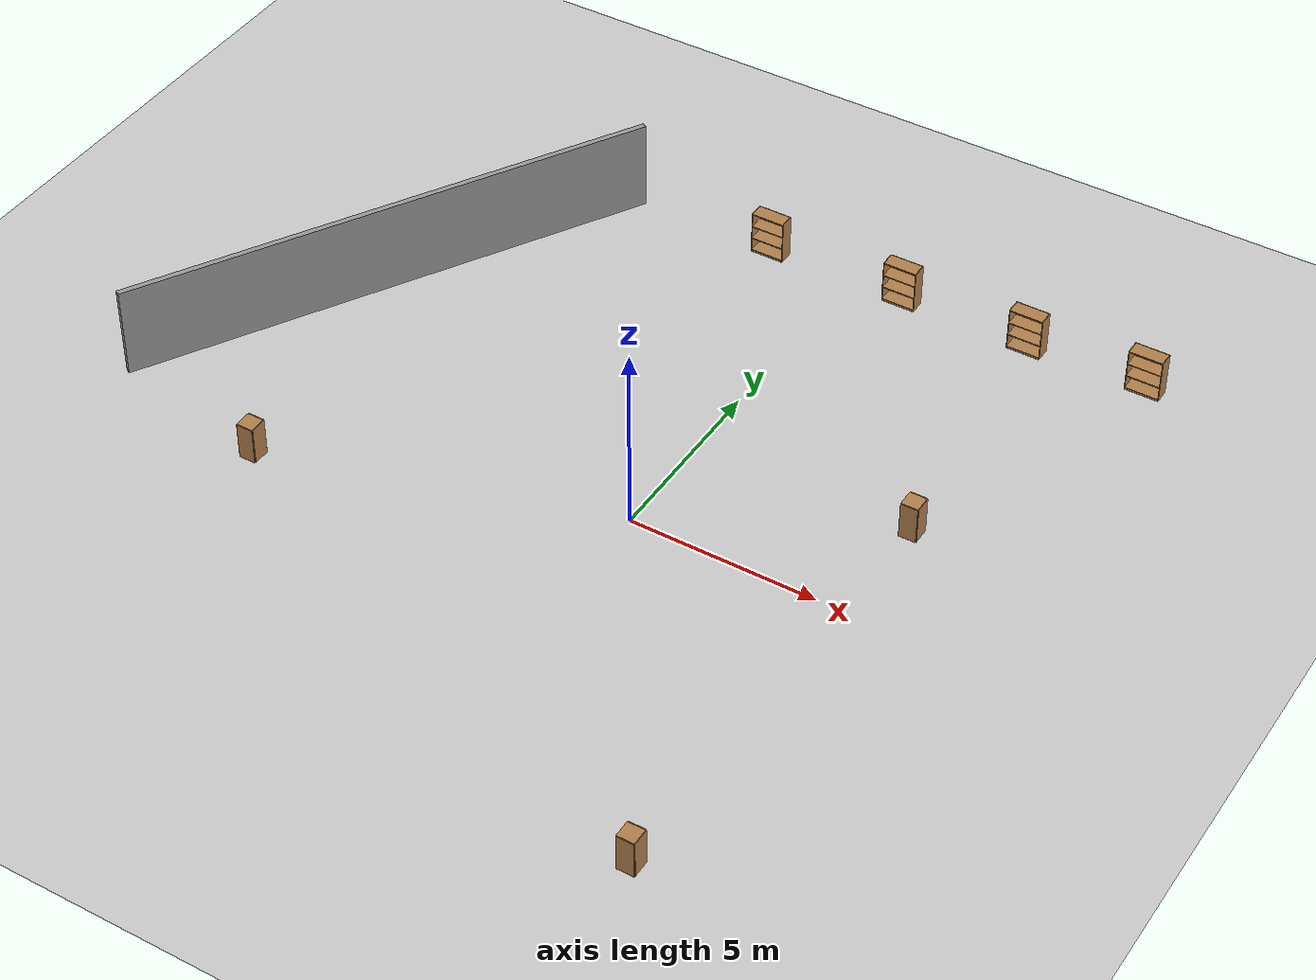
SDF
<sdf version="1.6">
 <world name="default">
  <light name="sun" type="directional">
   <pose>0 0 10 0 -0 0</pose>
   <diffuse>0.8 0.8 0.8 1</diffuse>
   <specular>0.2 0.2 0.2 1</specular>
   <attenuation>
    <range>1000</range>
    <constant>0.9</constant>
    <linear>0.01</linear>
    <quadratic>0.001</quadratic>
   </attenuation>
   <direction>-0.5 0.1 -0.9</direction>
  </light>
  <model name="ground_plane">
   <static>1</static>
   <link name="link">
    <collision name="collision">
     <geometry><plane><normal>0 0 1</normal><size>100 100</size></plane></geometry>
     <surface><friction><ode><mu>100</mu><mu2>50</mu2></ode></friction></surface>
    </collision>
    <visual name="visual">
     <cast_shadows>0</cast_shadows>
     <geometry><plane><normal>0 0 1</normal><size>100 100</size></plane></geometry>
     <material>
      <script><uri>file://media/materials/scripts/gazebo.material</uri><name>Gazebo/Grey</name></script>
     </material>
    </visual>
   </link>
  </model>
  <gravity>0 0 -9.8</gravity>
  <magnetic_field>6e-06 2.3e-05 -4.2e-05</magnetic_field>
  <atmosphere type="adiabatic"/>
  <physics name="default_physics" default="0" type="ode">
   <max_step_size>0.001</max_step_size>
   <real_time_factor>1</real_time_factor>
   <real_time_update_rate>1000</real_time_update_rate>
  </physics>
  <scene><ambient>0.4 0.4 0.4 1</ambient><background>0.7 0.7 0.7 1</background><shadows>1</shadows></scene>
  <audio><device>default</device></audio>
  <spherical_coordinates>
   <surface_model>EARTH_WGS84</surface_model>
   <latitude_deg>0</latitude_deg>
   <longitude_deg>0</longitude_deg>
   <elevation>0</elevation>
   <heading_deg>0</heading_deg>
  </spherical_coordinates>
  <model name="room10">
   <pose>-9.79599 4.32214 0 0 -0 0</pose>
   <link name="Wall_0">
    <collision name="Wall_0_Collision">
     <geometry><box><size>14.5 0.15 2.5</size></box></geometry>
     <pose>0 0 1.25 0 -0 0</pose>
    </collision>
    <visual name="Wall_0_Visual">
     <pose>0 0 1.25 0 -0 0</pose>
     <geometry><box><size>14.5 0.15 2.5</size></box></geometry>
     <material>
      <script><uri>file://media/materials/scripts/gazebo.material</uri><name>Gazebo/Grey</name></script>
      <ambient>1 1 1 1</ambient>
     </material>
     <meta><layer>0</layer></meta>
    </visual>
    <pose>0 0 0 0 -0 -2.0944</pose>
   </link>
   <static>1</static>
  </model>
  <model name="bookshelf">
   <static>1</static>
   <link name="link">
    <inertial><mass>1</mass></inertial>
    <collision name="back">
     <pose>0 0.005 0.6 0 -0 0</pose>
     <geometry><box><size>0.9 0.01 1.2</size></box></geometry>
    </collision>
    <visual name="visual1">
     <pose>0 0.005 0.6 0 -0 0</pose>
     <geometry><box><size>0.9 0.01 1.2</size></box></geometry>
     <material>
      <script><uri>file://media/materials/scripts/gazebo.material</uri><name>Gazebo/Wood</name></script>
     </material>
    </visual>
    <collision name="left_side">
     <pose>0.45 -0.195 0.6 0 -0 0</pose>
     <geometry><box><size>0.02 0.4 1.2</size></box></geometry>
    </collision>
    <visual name="visual2">
     <pose>0.45 -0.195 0.6 0 -0 0</pose>
     <geometry><box><size>0.02 0.4 1.2</size></box></geometry>
     <material>
      <script><uri>file://media/materials/scripts/gazebo.material</uri><name>Gazebo/Wood</name></script>
     </material>
    </visual>
    <collision name="right_side">
     <pose>-0.45 -0.195 0.6 0 -0 0</pose>
     <geometry><box><size>0.02 0.4 1.2</size></box></geometry>
    </collision>
    <visual name="visual3">
     <pose>-0.45 -0.195 0.6 0 -0 0</pose>
     <geometry><box><size>0.02 0.4 1.2</size></box></geometry>
     <material>
      <script><uri>file://media/materials/scripts/gazebo.material</uri><name>Gazebo/Wood</name></script>
     </material>
    </visual>
    <collision name="bottom">
     <pose>0 -0.195 0.03 0 -0 0</pose>
     <geometry><box><size>0.88 0.4 0.06</size></box></geometry>
    </collision>
    <visual name="visual4">
     <pose>0 -0.195 0.03 0 -0 0</pose>
     <geometry><box><size>0.88 0.4 0.06</size></box></geometry>
     <material>
      <script><uri>file://media/materials/scripts/gazebo.material</uri><name>Gazebo/Wood</name></script>
     </material>
    </visual>
    <collision name="top">
     <pose>0 -0.195 1.19 0 -0 0</pose>
     <geometry><box><size>0.88 0.4 0.02</size></box></geometry>
    </collision>
    <visual name="visual5">
     <pose>0 -0.195 1.19 0 -0 0</pose>
     <geometry><box><size>0.88 0.4 0.02</size></box></geometry>
     <material>
      <script><uri>file://media/materials/scripts/gazebo.material</uri><name>Gazebo/Wood</name></script>
     </material>
    </visual>
    <collision name="low_shelf">
     <pose>0 -0.195 0.43 0 -0 0</pose>
     <geometry><box><size>0.88 0.4 0.02</size></box></geometry>
    </collision>
    <visual name="visual6">
     <pose>0 -0.195 0.43 0 -0 0</pose>
     <geometry><box><size>0.88 0.4 0.02</size></box></geometry>
     <material>
      <script><uri>file://media/materials/scripts/gazebo.material</uri><name>Gazebo/Wood</name></script>
     </material>
    </visual>
    <collision name="high_shelf">
     <pose>0 -0.195 0.8 0 -0 0</pose>
     <geometry><box><size>0.88 0.4 0.02</size></box></geometry>
    </collision>
    <visual name="visual7">
     <pose>0 -0.195 0.8 0 -0 0</pose>
     <geometry><box><size>0.88 0.4 0.02</size></box></geometry>
     <material>
      <script><uri>file://media/materials/scripts/gazebo.material</uri><name>Gazebo/Wood</name></script>
     </material>
    </visual>
   </link>
   <pose>-2.27111 10.6899 0 0 -0 0</pose>
  </model>
  <model name="bookshelf_0">
   <static>1</static>
   <link name="link">
    <inertial><mass>1</mass></inertial>
    <collision name="back">
     <pose>0 0.005 0.6 0 -0 0</pose>
     <geometry><box><size>0.9 0.01 1.2</size></box></geometry>
    </collision>
    <visual name="visual1">
     <pose>0 0.005 0.6 0 -0 0</pose>
     <geometry><box><size>0.9 0.01 1.2</size></box></geometry>
     <material>
      <script><uri>file://media/materials/scripts/gazebo.material</uri><name>Gazebo/Wood</name></script>
     </material>
    </visual>
    <collision name="left_side">
     <pose>0.45 -0.195 0.6 0 -0 0</pose>
     <geometry><box><size>0.02 0.4 1.2</size></box></geometry>
    </collision>
    <visual name="visual2">
     <pose>0.45 -0.195 0.6 0 -0 0</pose>
     <geometry><box><size>0.02 0.4 1.2</size></box></geometry>
     <material>
      <script><uri>file://media/materials/scripts/gazebo.material</uri><name>Gazebo/Wood</name></script>
     </material>
    </visual>
    <collision name="right_side">
     <pose>-0.45 -0.195 0.6 0 -0 0</pose>
     <geometry><box><size>0.02 0.4 1.2</size></box></geometry>
    </collision>
    <visual name="visual3">
     <pose>-0.45 -0.195 0.6 0 -0 0</pose>
     <geometry><box><size>0.02 0.4 1.2</size></box></geometry>
     <material>
      <script><uri>file://media/materials/scripts/gazebo.material</uri><name>Gazebo/Wood</name></script>
     </material>
    </visual>
    <collision name="bottom">
     <pose>0 -0.195 0.03 0 -0 0</pose>
     <geometry><box><size>0.88 0.4 0.06</size></box></geometry>
    </collision>
    <visual name="visual4">
     <pose>0 -0.195 0.03 0 -0 0</pose>
     <geometry><box><size>0.88 0.4 0.06</size></box></geometry>
     <material>
      <script><uri>file://media/materials/scripts/gazebo.material</uri><name>Gazebo/Wood</name></script>
     </material>
    </visual>
    <collision name="top">
     <pose>0 -0.195 1.19 0 -0 0</pose>
     <geometry><box><size>0.88 0.4 0.02</size></box></geometry>
    </collision>
    <visual name="visual5">
     <pose>0 -0.195 1.19 0 -0 0</pose>
     <geometry><box><size>0.88 0.4 0.02</size></box></geometry>
     <material>
      <script><uri>file://media/materials/scripts/gazebo.material</uri><name>Gazebo/Wood</name></script>
     </material>
    </visual>
    <collision name="low_shelf">
     <pose>0 -0.195 0.43 0 -0 0</pose>
     <geometry><box><size>0.88 0.4 0.02</size></box></geometry>
    </collision>
    <visual name="visual6">
     <pose>0 -0.195 0.43 0 -0 0</pose>
     <geometry><box><size>0.88 0.4 0.02</size></box></geometry>
     <material>
      <script><uri>file://media/materials/scripts/gazebo.material</uri><name>Gazebo/Wood</name></script>
     </material>
    </visual>
    <collision name="high_shelf">
     <pose>0 -0.195 0.8 0 -0 0</pose>
     <geometry><box><size>0.88 0.4 0.02</size></box></geometry>
    </collision>
    <visual name="visual7">
     <pose>0 -0.195 0.8 0 -0 0</pose>
     <geometry><box><size>0.88 0.4 0.02</size></box></geometry>
     <material>
      <script><uri>file://media/materials/scripts/gazebo.material</uri><name>Gazebo/Wood</name></script>
     </material>
    </visual>
   </link>
   <pose>1.55418 10.6949 0 0 -0 0</pose>
  </model>
  <model name="bookshelf_1">
   <static>1</static>
   <link name="link">
    <inertial><mass>1</mass></inertial>
    <collision name="back">
     <pose>0 0.005 0.6 0 -0 0</pose>
     <geometry><box><size>0.9 0.01 1.2</size></box></geometry>
    </collision>
    <visual name="visual1">
     <pose>0 0.005 0.6 0 -0 0</pose>
     <geometry><box><size>0.9 0.01 1.2</size></box></geometry>
     <material>
      <script><uri>file://media/materials/scripts/gazebo.material</uri><name>Gazebo/Wood</name></script>
     </material>
    </visual>
    <collision name="left_side">
     <pose>0.45 -0.195 0.6 0 -0 0</pose>
     <geometry><box><size>0.02 0.4 1.2</size></box></geometry>
    </collision>
    <visual name="visual2">
     <pose>0.45 -0.195 0.6 0 -0 0</pose>
     <geometry><box><size>0.02 0.4 1.2</size></box></geometry>
     <material>
      <script><uri>file://media/materials/scripts/gazebo.material</uri><name>Gazebo/Wood</name></script>
     </material>
    </visual>
    <collision name="right_side">
     <pose>-0.45 -0.195 0.6 0 -0 0</pose>
     <geometry><box><size>0.02 0.4 1.2</size></box></geometry>
    </collision>
    <visual name="visual3">
     <pose>-0.45 -0.195 0.6 0 -0 0</pose>
     <geometry><box><size>0.02 0.4 1.2</size></box></geometry>
     <material>
      <script><uri>file://media/materials/scripts/gazebo.material</uri><name>Gazebo/Wood</name></script>
     </material>
    </visual>
    <collision name="bottom">
     <pose>0 -0.195 0.03 0 -0 0</pose>
     <geometry><box><size>0.88 0.4 0.06</size></box></geometry>
    </collision>
    <visual name="visual4">
     <pose>0 -0.195 0.03 0 -0 0</pose>
     <geometry><box><size>0.88 0.4 0.06</size></box></geometry>
     <material>
      <script><uri>file://media/materials/scripts/gazebo.material</uri><name>Gazebo/Wood</name></script>
     </material>
    </visual>
    <collision name="top">
     <pose>0 -0.195 1.19 0 -0 0</pose>
     <geometry><box><size>0.88 0.4 0.02</size></box></geometry>
    </collision>
    <visual name="visual5">
     <pose>0 -0.195 1.19 0 -0 0</pose>
     <geometry><box><size>0.88 0.4 0.02</size></box></geometry>
     <material>
      <script><uri>file://media/materials/scripts/gazebo.material</uri><name>Gazebo/Wood</name></script>
     </material>
    </visual>
    <collision name="low_shelf">
     <pose>0 -0.195 0.43 0 -0 0</pose>
     <geometry><box><size>0.88 0.4 0.02</size></box></geometry>
    </collision>
    <visual name="visual6">
     <pose>0 -0.195 0.43 0 -0 0</pose>
     <geometry><box><size>0.88 0.4 0.02</size></box></geometry>
     <material>
      <script><uri>file://media/materials/scripts/gazebo.material</uri><name>Gazebo/Wood</name></script>
     </material>
    </visual>
    <collision name="high_shelf">
     <pose>0 -0.195 0.8 0 -0 0</pose>
     <geometry><box><size>0.88 0.4 0.02</size></box></geometry>
    </collision>
    <visual name="visual7">
     <pose>0 -0.195 0.8 0 -0 0</pose>
     <geometry><box><size>0.88 0.4 0.02</size></box></geometry>
     <material>
      <script><uri>file://media/materials/scripts/gazebo.material</uri><name>Gazebo/Wood</name></script>
     </material>
    </visual>
   </link>
   <pose>5.09215 10.6814 0 0 -0 0</pose>
  </model>
  <model name="bookshelf_2">
   <static>1</static>
   <link name="link">
    <inertial><mass>1</mass></inertial>
    <collision name="back">
     <pose>0 0.005 0.6 0 -0 0</pose>
     <geometry><box><size>0.9 0.01 1.2</size></box></geometry>
    </collision>
    <visual name="visual1">
     <pose>0 0.005 0.6 0 -0 0</pose>
     <geometry><box><size>0.9 0.01 1.2</size></box></geometry>
     <material>
      <script><uri>file://media/materials/scripts/gazebo.material</uri><name>Gazebo/Wood</name></script>
     </material>
    </visual>
    <collision name="left_side">
     <pose>0.45 -0.195 0.6 0 -0 0</pose>
     <geometry><box><size>0.02 0.4 1.2</size></box></geometry>
    </collision>
    <visual name="visual2">
     <pose>0.45 -0.195 0.6 0 -0 0</pose>
     <geometry><box><size>0.02 0.4 1.2</size></box></geometry>
     <material>
      <script><uri>file://media/materials/scripts/gazebo.material</uri><name>Gazebo/Wood</name></script>
     </material>
    </visual>
    <collision name="right_side">
     <pose>-0.45 -0.195 0.6 0 -0 0</pose>
     <geometry><box><size>0.02 0.4 1.2</size></box></geometry>
    </collision>
    <visual name="visual3">
     <pose>-0.45 -0.195 0.6 0 -0 0</pose>
     <geometry><box><size>0.02 0.4 1.2</size></box></geometry>
     <material>
      <script><uri>file://media/materials/scripts/gazebo.material</uri><name>Gazebo/Wood</name></script>
     </material>
    </visual>
    <collision name="bottom">
     <pose>0 -0.195 0.03 0 -0 0</pose>
     <geometry><box><size>0.88 0.4 0.06</size></box></geometry>
    </collision>
    <visual name="visual4">
     <pose>0 -0.195 0.03 0 -0 0</pose>
     <geometry><box><size>0.88 0.4 0.06</size></box></geometry>
     <material>
      <script><uri>file://media/materials/scripts/gazebo.material</uri><name>Gazebo/Wood</name></script>
     </material>
    </visual>
    <collision name="top">
     <pose>0 -0.195 1.19 0 -0 0</pose>
     <geometry><box><size>0.88 0.4 0.02</size></box></geometry>
    </collision>
    <visual name="visual5">
     <pose>0 -0.195 1.19 0 -0 0</pose>
     <geometry><box><size>0.88 0.4 0.02</size></box></geometry>
     <material>
      <script><uri>file://media/materials/scripts/gazebo.material</uri><name>Gazebo/Wood</name></script>
     </material>
    </visual>
    <collision name="low_shelf">
     <pose>0 -0.195 0.43 0 -0 0</pose>
     <geometry><box><size>0.88 0.4 0.02</size></box></geometry>
    </collision>
    <visual name="visual6">
     <pose>0 -0.195 0.43 0 -0 0</pose>
     <geometry><box><size>0.88 0.4 0.02</size></box></geometry>
     <material>
      <script><uri>file://media/materials/scripts/gazebo.material</uri><name>Gazebo/Wood</name></script>
     </material>
    </visual>
    <collision name="high_shelf">
     <pose>0 -0.195 0.8 0 -0 0</pose>
     <geometry><box><size>0.88 0.4 0.02</size></box></geometry>
    </collision>
    <visual name="visual7">
     <pose>0 -0.195 0.8 0 -0 0</pose>
     <geometry><box><size>0.88 0.4 0.02</size></box></geometry>
     <material>
      <script><uri>file://media/materials/scripts/gazebo.material</uri><name>Gazebo/Wood</name></script>
     </material>
    </visual>
   </link>
   <pose>8.27078 10.7934 0 0 -0 0</pose>
  </model>
  <model name="cabinet">
   <static>1</static>
   <link name="cabinet_bottom_plate">
    <inertial>
     <pose>0 0 -1 0 -0 0</pose>
     <inertia><ixx>2.05</ixx><ixy>0</ixy><ixz>0</ixz><iyy>2.05</iyy><iyz>0</iyz><izz>2.05</izz></inertia>
     <mass>25</mass>
    </inertial>
    <collision name="cabinet_bottom_plate_geom">
     <pose>0 0 0.01 0 -0 0</pose>
     <geometry><box><size>0.45 0.45 0.02</size></box></geometry>
    </collision>
    <visual name="cabinet_bottom_plate_geom_visual">
     <pose>0 0 0.01 0 -0 0</pose>
     <geometry><box><size>0.45 0.45 0.02</size></box></geometry>
     <material>
      <script><uri>file://media/materials/scripts/gazebo.material</uri><name>Gazebo/Wood</name></script>
     </material>
    </visual>
    <collision name="cabinet_bottom_plate_geom_cabinet_back_plate">
     <pose>0.235 0 0.51 0 -0 0</pose>
     <geometry><box><size>0.02 0.45 1.02</size></box></geometry>
    </collision>
    <visual name="cabinet_bottom_plate_geom_cabinet_back_plate_visual">
     <pose>0.235 0 0.51 0 -0 0</pose>
     <geometry><box><size>0.02 0.45 1.02</size></box></geometry>
     <material>
      <script><uri>file://media/materials/scripts/gazebo.material</uri><name>Gazebo/Wood</name></script>
     </material>
    </visual>
    <collision name="cabinet_bottom_plate_geom_cabinet_left_plate">
     <pose>0 0.235 0.51 0 -0 0</pose>
     <geometry><box><size>0.45 0.02 1.02</size></box></geometry>
    </collision>
    <visual name="cabinet_bottom_plate_geom_cabinet_left_plate_visual">
     <pose>0 0.235 0.51 0 -0 0</pose>
     <geometry><box><size>0.45 0.02 1.02</size></box></geometry>
     <material>
      <script><uri>file://media/materials/scripts/gazebo.material</uri><name>Gazebo/Wood</name></script>
     </material>
    </visual>
    <collision name="cabinet_bottom_plate_geom_cabinet_middle_plate">
     <pose>0 0 0.51 0 -0 0</pose>
     <geometry><box><size>0.45 0.45 0.02</size></box></geometry>
    </collision>
    <visual name="cabinet_bottom_plate_geom_cabinet_middle_plate_visual">
     <pose>0 0 0.51 0 -0 0</pose>
     <geometry><box><size>0.45 0.45 0.02</size></box></geometry>
     <material>
      <script><uri>file://media/materials/scripts/gazebo.material</uri><name>Gazebo/Wood</name></script>
     </material>
    </visual>
    <collision name="cabinet_bottom_plate_geom_cabinet_right_plate">
     <pose>0 -0.235 0.51 0 -0 0</pose>
     <geometry><box><size>0.45 0.02 1.02</size></box></geometry>
    </collision>
    <visual name="cabinet_bottom_plate_geom_cabinet_right_plate_visual">
     <pose>0 -0.235 0.51 0 -0 0</pose>
     <geometry><box><size>0.45 0.02 1.02</size></box></geometry>
     <material>
      <script><uri>file://media/materials/scripts/gazebo.material</uri><name>Gazebo/Wood</name></script>
     </material>
    </visual>
    <collision name="cabinet_bottom_plate_geom_cabinet_top_plate">
     <pose>0 0 1.01 0 -0 0</pose>
     <geometry><box><size>0.45 0.45 0.02</size></box></geometry>
    </collision>
    <visual name="cabinet_bottom_plate_geom_cabinet_top_plate_visual">
     <pose>0 0 1.01 0 -0 0</pose>
     <geometry><box><size>0.45 0.45 0.02</size></box></geometry>
     <material>
      <script><uri>file://media/materials/scripts/gazebo.material</uri><name>Gazebo/Wood</name></script>
     </material>
    </visual>
   </link>
   <pose>-8.932 -2.76998 0 0 -0 0</pose>
  </model>
  <model name="cabinet_0">
   <static>1</static>
   <link name="cabinet_bottom_plate">
    <inertial>
     <pose>0 0 -1 0 -0 0</pose>
     <inertia><ixx>2.05</ixx><ixy>0</ixy><ixz>0</ixz><iyy>2.05</iyy><iyz>0</iyz><izz>2.05</izz></inertia>
     <mass>25</mass>
    </inertial>
    <collision name="cabinet_bottom_plate_geom">
     <pose>0 0 0.01 0 -0 0</pose>
     <geometry><box><size>0.45 0.45 0.02</size></box></geometry>
    </collision>
    <visual name="cabinet_bottom_plate_geom_visual">
     <pose>0 0 0.01 0 -0 0</pose>
     <geometry><box><size>0.45 0.45 0.02</size></box></geometry>
     <material>
      <script><uri>file://media/materials/scripts/gazebo.material</uri><name>Gazebo/Wood</name></script>
     </material>
    </visual>
    <collision name="cabinet_bottom_plate_geom_cabinet_back_plate">
     <pose>0.235 0 0.51 0 -0 0</pose>
     <geometry><box><size>0.02 0.45 1.02</size></box></geometry>
    </collision>
    <visual name="cabinet_bottom_plate_geom_cabinet_back_plate_visual">
     <pose>0.235 0 0.51 0 -0 0</pose>
     <geometry><box><size>0.02 0.45 1.02</size></box></geometry>
     <material>
      <script><uri>file://media/materials/scripts/gazebo.material</uri><name>Gazebo/Wood</name></script>
     </material>
    </visual>
    <collision name="cabinet_bottom_plate_geom_cabinet_left_plate">
     <pose>0 0.235 0.51 0 -0 0</pose>
     <geometry><box><size>0.45 0.02 1.02</size></box></geometry>
    </collision>
    <visual name="cabinet_bottom_plate_geom_cabinet_left_plate_visual">
     <pose>0 0.235 0.51 0 -0 0</pose>
     <geometry><box><size>0.45 0.02 1.02</size></box></geometry>
     <material>
      <script><uri>file://media/materials/scripts/gazebo.material</uri><name>Gazebo/Wood</name></script>
     </material>
    </visual>
    <collision name="cabinet_bottom_plate_geom_cabinet_middle_plate">
     <pose>0 0 0.51 0 -0 0</pose>
     <geometry><box><size>0.45 0.45 0.02</size></box></geometry>
    </collision>
    <visual name="cabinet_bottom_plate_geom_cabinet_middle_plate_visual">
     <pose>0 0 0.51 0 -0 0</pose>
     <geometry><box><size>0.45 0.45 0.02</size></box></geometry>
     <material>
      <script><uri>file://media/materials/scripts/gazebo.material</uri><name>Gazebo/Wood</name></script>
     </material>
    </visual>
    <collision name="cabinet_bottom_plate_geom_cabinet_right_plate">
     <pose>0 -0.235 0.51 0 -0 0</pose>
     <geometry><box><size>0.45 0.02 1.02</size></box></geometry>
    </collision>
    <visual name="cabinet_bottom_plate_geom_cabinet_right_plate_visual">
     <pose>0 -0.235 0.51 0 -0 0</pose>
     <geometry><box><size>0.45 0.02 1.02</size></box></geometry>
     <material>
      <script><uri>file://media/materials/scripts/gazebo.material</uri><name>Gazebo/Wood</name></script>
     </material>
    </visual>
    <collision name="cabinet_bottom_plate_geom_cabinet_top_plate">
     <pose>0 0 1.01 0 -0 0</pose>
     <geometry><box><size>0.45 0.45 0.02</size></box></geometry>
    </collision>
    <visual name="cabinet_bottom_plate_geom_cabinet_top_plate_visual">
     <pose>0 0 1.01 0 -0 0</pose>
     <geometry><box><size>0.45 0.45 0.02</size></box></geometry>
     <material>
      <script><uri>file://media/materials/scripts/gazebo.material</uri><name>Gazebo/Wood</name></script>
     </material>
    </visual>
   </link>
   <pose>5.80141 3.10273 0 0 -0 0</pose>
  </model>
  <model name="cabinet_1">
   <static>1</static>
   <link name="cabinet_bottom_plate">
    <inertial>
     <pose>0 0 -1 0 -0 0</pose>
     <inertia><ixx>2.05</ixx><ixy>0</ixy><ixz>0</ixz><iyy>2.05</iyy><iyz>0</iyz><izz>2.05</izz></inertia>
     <mass>25</mass>
    </inertial>
    <collision name="cabinet_bottom_plate_geom">
     <pose>0 0 0.01 0 -0 0</pose>
     <geometry><box><size>0.45 0.45 0.02</size></box></geometry>
    </collision>
    <visual name="cabinet_bottom_plate_geom_visual">
     <pose>0 0 0.01 0 -0 0</pose>
     <geometry><box><size>0.45 0.45 0.02</size></box></geometry>
     <material>
      <script><uri>file://media/materials/scripts/gazebo.material</uri><name>Gazebo/Wood</name></script>
     </material>
    </visual>
    <collision name="cabinet_bottom_plate_geom_cabinet_back_plate">
     <pose>0.235 0 0.51 0 -0 0</pose>
     <geometry><box><size>0.02 0.45 1.02</size></box></geometry>
    </collision>
    <visual name="cabinet_bottom_plate_geom_cabinet_back_plate_visual">
     <pose>0.235 0 0.51 0 -0 0</pose>
     <geometry><box><size>0.02 0.45 1.02</size></box></geometry>
     <material>
      <script><uri>file://media/materials/scripts/gazebo.material</uri><name>Gazebo/Wood</name></script>
     </material>
    </visual>
    <collision name="cabinet_bottom_plate_geom_cabinet_left_plate">
     <pose>0 0.235 0.51 0 -0 0</pose>
     <geometry><box><size>0.45 0.02 1.02</size></box></geometry>
    </collision>
    <visual name="cabinet_bottom_plate_geom_cabinet_left_plate_visual">
     <pose>0 0.235 0.51 0 -0 0</pose>
     <geometry><box><size>0.45 0.02 1.02</size></box></geometry>
     <material>
      <script><uri>file://media/materials/scripts/gazebo.material</uri><name>Gazebo/Wood</name></script>
     </material>
    </visual>
    <collision name="cabinet_bottom_plate_geom_cabinet_middle_plate">
     <pose>0 0 0.51 0 -0 0</pose>
     <geometry><box><size>0.45 0.45 0.02</size></box></geometry>
    </collision>
    <visual name="cabinet_bottom_plate_geom_cabinet_middle_plate_visual">
     <pose>0 0 0.51 0 -0 0</pose>
     <geometry><box><size>0.45 0.45 0.02</size></box></geometry>
     <material>
      <script><uri>file://media/materials/scripts/gazebo.material</uri><name>Gazebo/Wood</name></script>
     </material>
    </visual>
    <collision name="cabinet_bottom_plate_geom_cabinet_right_plate">
     <pose>0 -0.235 0.51 0 -0 0</pose>
     <geometry><box><size>0.45 0.02 1.02</size></box></geometry>
    </collision>
    <visual name="cabinet_bottom_plate_geom_cabinet_right_plate_visual">
     <pose>0 -0.235 0.51 0 -0 0</pose>
     <geometry><box><size>0.45 0.02 1.02</size></box></geometry>
     <material>
      <script><uri>file://media/materials/scripts/gazebo.material</uri><name>Gazebo/Wood</name></script>
     </material>
    </visual>
    <collision name="cabinet_bottom_plate_geom_cabinet_top_plate">
     <pose>0 0 1.01 0 -0 0</pose>
     <geometry><box><size>0.45 0.45 0.02</size></box></geometry>
    </collision>
    <visual name="cabinet_bottom_plate_geom_cabinet_top_plate_visual">
     <pose>0 0 1.01 0 -0 0</pose>
     <geometry><box><size>0.45 0.45 0.02</size></box></geometry>
     <material>
      <script><uri>file://media/materials/scripts/gazebo.material</uri><name>Gazebo/Wood</name></script>
     </material>
    </visual>
   </link>
   <pose>5.56386 -8.90805 0 0 -0 0</pose>
  </model>
 </world>
</sdf>
